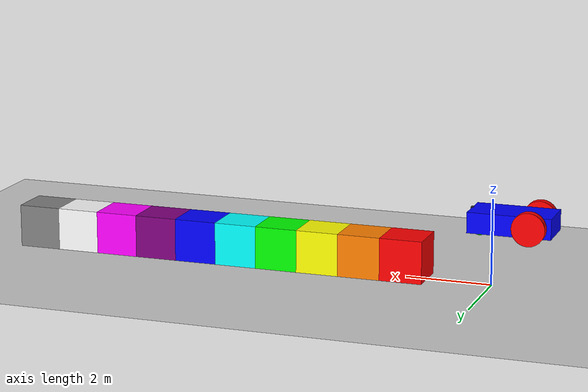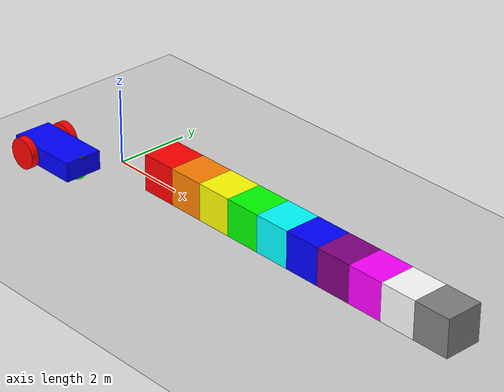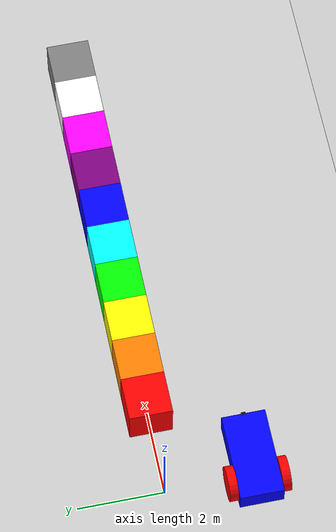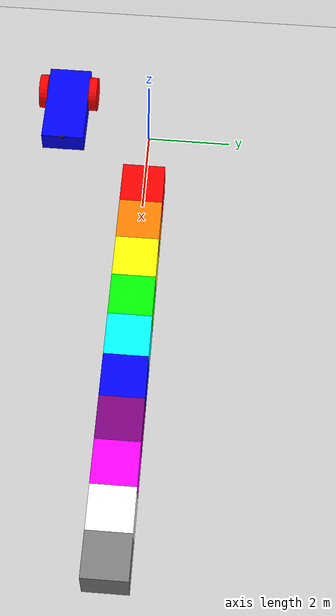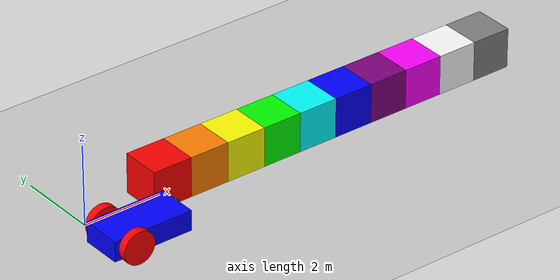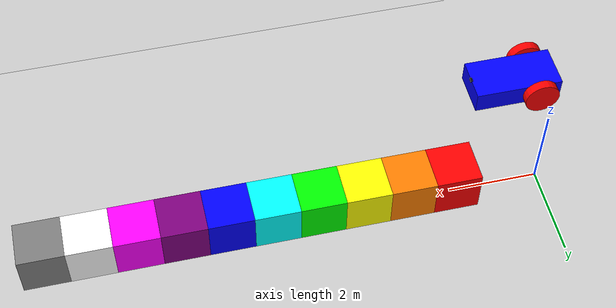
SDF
<?xml version="1.0"?>
<sdf version="1.10">
    <world name="car_world">
        <plugin
            filename="gz-sim-sensors-system"
            name="gz::sim::systems::Sensors">
            <render_engine>ogre2</render_engine>
        </plugin>
        <physics name="1ms" type="ignored">
            <max_step_size>0.001</max_step_size>
            <real_time_factor>1.0</real_time_factor>
        </physics>
        <plugin
            filename="gz-sim-physics-system"
            name="gz::sim::systems::Physics">
        </plugin>
        <plugin
            filename="gz-sim-user-commands-system"
            name="gz::sim::systems::UserCommands">
        </plugin>
        <plugin
            filename="gz-sim-scene-broadcaster-system"
            name="gz::sim::systems::SceneBroadcaster">
        </plugin>

        <light type="directional" name="sun">
            <cast_shadows>true</cast_shadows>
            <pose>0 0 10 0 0 0</pose>
            <diffuse>0.8 0.8 0.8 1</diffuse>
            <specular>0.2 0.2 0.2 1</specular>
            <attenuation>
                <range>1000</range>
                <constant>0.9</constant>
                <linear>0.01</linear>
                <quadratic>0.001</quadratic>
            </attenuation>
            <direction>-0.5 0.1 -0.9</direction>
        </light>

        <model name="ground_plane">
            <static>true</static>
            <link name="link">
                <collision name="collision">
                    <geometry>
                        <plane>
                            <normal>0 0 1</normal>
                        </plane>
                    </geometry>
                </collision>
                <visual name="visual">
                    <geometry>
                        <plane>
                            <normal>0 0 1</normal>
                            <size>100 100</size>
                        </plane>
                    </geometry>
                    <material>
                        <ambient>0.8 0.8 0.8 1</ambient>
                        <diffuse>0.8 0.8 0.8 1</diffuse>
                        <specular>0.8 0.8 0.8 1</specular>
                    </material>
                </visual>
            </link>
        </model>

        <model name='vehicle_blue' canonical_link='chassis'>
            <pose>0 -2 1 0 0 0</pose>
            <frame name="lidar_frame" attached_to='chassis'>
                <pose>0.8 0 0.5 0 0 0</pose>
            </frame>
            <frame name="camera_frame" attached_to='chassis'>
                <pose>1.0 0 0.25 0 0 0</pose>
            </frame>
            <!--chassis-->
            <link name='chassis'>
                <inertial>
                    <mass>1.14395</mass>
                    <inertia>
                        <ixx>0.095329</ixx>
                        <ixy>0</ixy>
                        <ixz>0</ixz>
                        <iyy>0.381317</iyy>
                        <iyz>0</iyz>
                        <izz>0.476646</izz>
                    </inertia>
                </inertial>
                <visual name='visual'>
                    <geometry>
                        <box>
                            <size>2.0 1.0 0.5</size>
                        </box>
                    </geometry>
                    <material>
                        <ambient>0.0 0.0 1.0 1</ambient>
                        <diffuse>0.0 0.0 1.0 1</diffuse>
                        <specular>0.0 0.0 1.0 1</specular>
                    </material>
                </visual>
                <collision name='collision'>
                    <geometry>
                        <box>
                            <size>2.0 1.0 0.5</size>
                        </box>
                    </geometry>
                </collision>
                <sensor name='gpu_lidar' type='gpu_lidar'>
                    <pose relative_to='lidar_frame'>0 0 0 0 0 0</pose>
                    <topic>lidar</topic>
                    <update_rate>10</update_rate>
                    <ray>
                        <scan>
                            <horizontal>
                                <samples>640</samples>
                                <resolution>1</resolution>
                                <min_angle>-1.396263</min_angle>
                                <max_angle>1.396263</max_angle>
                            </horizontal>
                            <vertical>
                                <samples>1</samples>
                                <resolution>0.01</resolution>
                                <min_angle>0</min_angle>
                                <max_angle>0</max_angle>
                            </vertical>
                        </scan>
                        <range>
                            <min>0.08</min>
                            <max>10.0</max>
                            <resolution>0.01</resolution>
                        </range>
                    </ray>
                    <always_on>1</always_on>
                    <visualize>true</visualize>
                </sensor>
            </link>

            <!--Left wheel-->
            <link name='left_wheel'>
                <pose relative_to="chassis">-0.5 0.6 0 -1.5707 0 0</pose>
                <inertial>
                    <mass>1</mass>
                    <inertia>
                        <ixx>0.043333</ixx>
                        <ixy>0</ixy>
                        <ixz>0</ixz>
                        <iyy>0.043333</iyy>
                        <iyz>0</iyz>
                        <izz>0.08</izz>
                    </inertia>
                </inertial>
                <visual name='visual'>
                    <geometry>
                        <cylinder>
                            <radius>0.4</radius>
                            <length>0.2</length>
                        </cylinder>
                    </geometry>
                    <material>
                        <ambient>1.0 0.0 0.0 1</ambient>
                        <diffuse>1.0 0.0 0.0 1</diffuse>
                        <specular>1.0 0.0 0.0 1</specular>
                    </material>
                </visual>
                <collision name='collision'>
                    <geometry>
                        <cylinder>
                            <radius>0.4</radius>
                            <length>0.2</length>
                        </cylinder>
                    </geometry>
                </collision>
            </link>

            <link name='right_wheel'>
                <pose relative_to="chassis">-0.5 -0.6 0 -1.5707 0 0</pose>
                <inertial>
                    <mass>1</mass>
                    <inertia>
                        <ixx>0.043333</ixx>
                        <ixy>0</ixy>
                        <ixz>0</ixz>
                        <iyy>0.043333</iyy>
                        <iyz>0</iyz>
                        <izz>0.08</izz>
                    </inertia>
                </inertial>
                <visual name='visual'>
                    <geometry>
                        <cylinder>
                            <radius>0.4</radius>
                            <length>0.2</length>
                        </cylinder>
                    </geometry>
                    <material>
                        <ambient>1.0 0.0 0.0 1</ambient>
                        <diffuse>1.0 0.0 0.0 1</diffuse>
                        <specular>1.0 0.0 0.0 1</specular>
                    </material>
                </visual>
                <collision name='collision'>
                    <geometry>
                        <cylinder>
                            <radius>0.4</radius>
                            <length>0.2</length>
                        </cylinder>
                    </geometry>
                </collision>
            </link>

            <frame name="caster_frame" attached_to='chassis'>
                <pose>0.8 0 -0.2 0 0 0</pose>
            </frame>

            <link name='caster'>
                <pose relative_to='caster_frame' />
                <inertial>
                    <mass>1</mass>
                    <inertia>
                        <ixx>0.016</ixx>
                        <ixy>0</ixy>
                        <ixz>0</ixz>
                        <iyy>0.016</iyy>
                        <iyz>0</iyz>
                        <izz>0.016</izz>
                    </inertia>
                </inertial>
                <visual name='visual'>
                    <geometry>
                        <sphere>
                            <radius>0.2</radius>
                        </sphere>
                    </geometry>
                    <material>
                        <ambient>0.0 1 0.0 1</ambient>
                        <diffuse>0.0 1 0.0 1</diffuse>
                        <specular>0.0 1 0.0 1</specular>
                    </material>
                </visual>
                <collision name='collision'>
                    <geometry>
                        <sphere>
                            <radius>0.2</radius>
                        </sphere>
                    </geometry>
                </collision>
            </link>
            <link name='camera_link'>
                <pose relative_to='camera_frame'>0 0 0 0 0 1.5708</pose>
                <inertial>
                    <mass>0.01</mass>
                    <inertia>
                        <ixx>1e-5</ixx>
                        <ixy>0</ixy>
                        <ixz>0</ixz>
                        <iyy>1e-5</iyy>
                        <iyz>0</iyz>
                        <izz>1e-5</izz>
                    </inertia>
                </inertial>
                <visual name='visual'>
                    <geometry>
                        <box>
                            <size>0.1 0.05 0.05</size>
                        </box>
                    </geometry>
                    <material>
                        <ambient>0.0 0.0 0.0 1</ambient>
                        <diffuse>0.0 0.0 0.0 1</diffuse>
                        <specular>0.0 0.0 0.0 1</specular>
                    </material>
                </visual>
                <collision name='collision'>
                    <geometry>
                        <box>
                            <size>0.1 0.05 0.05</size>
                        </box>
                    </geometry>
                </collision>
                <sensor name='camera_sensor' type='camera'>
                    <pose>0 0 0 0 0 0</pose>
                    <topic>/camera/image_raw</topic>
                    <update_rate>30</update_rate>
                    <always_on>1</always_on>
                    <visualize>1</visualize>
                    <camera>
                        <image>
                            <horizontal_fov>1.047</horizontal_fov>
                            <width>640</width>
                            <height>480</height>
                            <format>R8G8B8</format>
                        </image>
                        <clip>
                            <near>0.1</near>
                            <far>100</far>
                        </clip>
                    </camera>
                </sensor>
            </link>
            <joint name='left_wheel_joint' type='revolute'>
                <pose relative_to='left_wheel' />
                <parent>chassis</parent>
                <child>left_wheel</child>
                <axis>
                    <xyz expressed_in='__model__'>0 1 0</xyz>
                    <limit>
                        <lower>-1.79769e+308</lower>
                        <upper>1.79769e+308</upper>
                    </limit>
                </axis>
            </joint>
            <joint name='right_wheel_joint' type='revolute'>
                <pose relative_to='right_wheel' />
                <parent>chassis</parent>
                <child>right_wheel</child>
                <axis>
                    <xyz expressed_in='__model__'>0 1 0</xyz>
                    <limit>
                        <lower>-1.79769e+308</lower>
                        <upper>1.79769e+308</upper>
                    </limit>
                </axis>
            </joint>
            <joint name='caster_wheel' type='ball'>
                <parent>chassis</parent>
                <child>caster</child>
            </joint>
            <joint name='camera_joint' type='fixed'>
                <parent>chassis</parent>
                <child>camera_link</child>
            </joint>
            <plugin
                filename="gz-sim-diff-drive-system"
                name="gz::sim::systems::DiffDrive">
                <child_frame_id>chassis</child_frame_id>
                <publish_odom_tf>true</publish_odom_tf>
                <left_joint>left_wheel_joint</left_joint>
                <right_joint>right_wheel_joint</right_joint>
                <wheel_separation>1.25</wheel_separation>
                <wheel_radius>0.3</wheel_radius>
                <odom_publish_frequency>20</odom_publish_frequency>
                <max_linear_acceleration>1</max_linear_acceleration>
                <min_linear_acceleration>-1</min_linear_acceleration>
                <max_angular_acceleration>2</max_angular_acceleration>
                <min_angular_acceleration>-2</min_angular_acceleration>
                <max_linear_velocity>0.5</max_linear_velocity>
                <min_linear_velocity>-0.5</min_linear_velocity>
                <max_angular_velocity>1</max_angular_velocity>
                <min_angular_velocity>-1</min_angular_velocity>
                <topic>/cmd_vel</topic>
            </plugin>
        </model>

        <model name="cube_0">
            <static>true</static>
            <pose>2.0 0 0.5 0 0 0</pose>
            <link name="link">
                <visual name="visual">
                    <geometry><box><size>1 1 1</size></box></geometry>
                    <material>
                        <ambient>1 0 0 1</ambient>
                        <diffuse>1 0 0 1</diffuse>
                        <specular>0.1 0.1 0.1 1</specular>
                    </material>
                </visual>
                <collision name="collision">
                    <geometry><box><size>1 1 1</size></box></geometry>
                </collision>
            </link>
        </model>

        <!-- Cube 1: Orange -->
        <model name="cube_1">
            <static>true</static>
            <pose>3.0 0 0.5 0 0 0</pose>
            <link name="link">
                <visual name="visual">
                    <geometry><box><size>1 1 1</size></box></geometry>
                    <material>
                        <ambient>1 0.5 0 1</ambient>
                        <diffuse>1 0.5 0 1</diffuse>
                        <specular>0.1 0.1 0.1 1</specular>
                    </material>
                </visual>
                <collision name="collision">
                    <geometry><box><size>1 1 1</size></box></geometry>
                </collision>
            </link>
        </model>

        <!-- Cube 2: Yellow -->
        <model name="cube_2">
            <static>true</static>
            <pose>4.0 0 0.5 0 0 0</pose>
            <link name="link">
                <visual name="visual">
                    <geometry><box><size>1 1 1</size></box></geometry>
                    <material>
                        <ambient>1 1 0 1</ambient>
                        <diffuse>1 1 0 1</diffuse>
                        <specular>0.1 0.1 0.1 1</specular>
                    </material>
                </visual>
                <collision name="collision">
                    <geometry><box><size>1 1 1</size></box></geometry>
                </collision>
            </link>
        </model>

        <!-- Cube 3: Green -->
        <model name="cube_3">
            <static>true</static>
            <pose>5.0 0 0.5 0 0 0</pose>
            <link name="link">
                <visual name="visual">
                    <geometry><box><size>1 1 1</size></box></geometry>
                    <material>
                        <ambient>0 1 0 1</ambient>
                        <diffuse>0 1 0 1</diffuse>
                        <specular>0.1 0.1 0.1 1</specular>
                    </material>
                </visual>
                <collision name="collision">
                    <geometry><box><size>1 1 1</size></box></geometry>
                </collision>
            </link>
        </model>

        <!-- Cube 4: Cyan -->
        <model name="cube_4">
            <static>true</static>
            <pose>6.0 0 0.5 0 0 0</pose>
            <link name="link">
                <visual name="visual">
                    <geometry><box><size>1 1 1</size></box></geometry>
                    <material>
                        <ambient>0 1 1 1</ambient>
                        <diffuse>0 1 1 1</diffuse>
                        <specular>0.1 0.1 0.1 1</specular>
                    </material>
                </visual>
                <collision name="collision">
                    <geometry><box><size>1 1 1</size></box></geometry>
                </collision>
            </link>
        </model>

        <!-- Cube 5: Blue -->
        <model name="cube_5">
            <static>true</static>
            <pose>7.0 0 0.5 0 0 0</pose>
            <link name="link">
                <visual name="visual">
                    <geometry><box><size>1 1 1</size></box></geometry>
                    <material>
                        <ambient>0 0 1 1</ambient>
                        <diffuse>0 0 1 1</diffuse>
                        <specular>0.1 0.1 0.1 1</specular>
                    </material>
                </visual>
                <collision name="collision">
                    <geometry><box><size>1 1 1</size></box></geometry>
                </collision>
            </link>
        </model>

        <!-- Cube 6: Purple -->
        <model name="cube_6">
            <static>true</static>
            <pose>8.0 0 0.5 0 0 0</pose>
            <link name="link">
                <visual name="visual">
                    <geometry><box><size>1 1 1</size></box></geometry>
                    <material>
                        <ambient>0.5 0 0.5 1</ambient>
                        <diffuse>0.5 0 0.5 1</diffuse>
                        <specular>0.1 0.1 0.1 1</specular>
                    </material>
                </visual>
                <collision name="collision">
                    <geometry><box><size>1 1 1</size></box></geometry>
                </collision>
            </link>
        </model>

        <!-- Cube 7: Magenta -->
        <model name="cube_7">
            <static>true</static>
            <pose>9.0 0 0.5 0 0 0</pose>
            <link name="link">
                <visual name="visual">
                    <geometry><box><size>1 1 1</size></box></geometry>
                    <material>
                        <ambient>1 0 1 1</ambient>
                        <diffuse>1 0 1 1</diffuse>
                        <specular>0.1 0.1 0.1 1</specular>
                    </material>
                </visual>
                <collision name="collision">
                    <geometry><box><size>1 1 1</size></box></geometry>
                </collision>
            </link>
        </model>

        <!-- Cube 8: White -->
        <model name="cube_8">
            <static>true</static>
            <pose>10.0 0 0.5 0 0 0</pose>
            <link name="link">
                <visual name="visual">
                    <geometry><box><size>1 1 1</size></box></geometry>
                    <material>
                        <ambient>1 1 1 1</ambient>
                        <diffuse>1 1 1 1</diffuse>
                        <specular>0.1 0.1 0.1 1</specular>
                    </material>
                </visual>
                <collision name="collision">
                    <geometry><box><size>1 1 1</size></box></geometry>
                </collision>
            </link>
        </model>

        <!-- Cube 9: Gray -->
        <model name="cube_9">
            <static>true</static>
            <pose>11.0 0 0.5 0 0 0</pose>
            <link name="link">
                <visual name="visual">
                    <geometry><box><size>1 1 1</size></box></geometry>
                    <material>
                        <ambient>0.5 0.5 0.5 1</ambient>
                        <diffuse>0.5 0.5 0.5 1</diffuse>
                        <specular>0.1 0.1 0.1 1</specular>
                    </material>
                </visual>
                <collision name="collision">
                    <geometry><box><size>1 1 1</size></box></geometry>
                </collision>
            </link>
        </model>
    </world>
</sdf>
